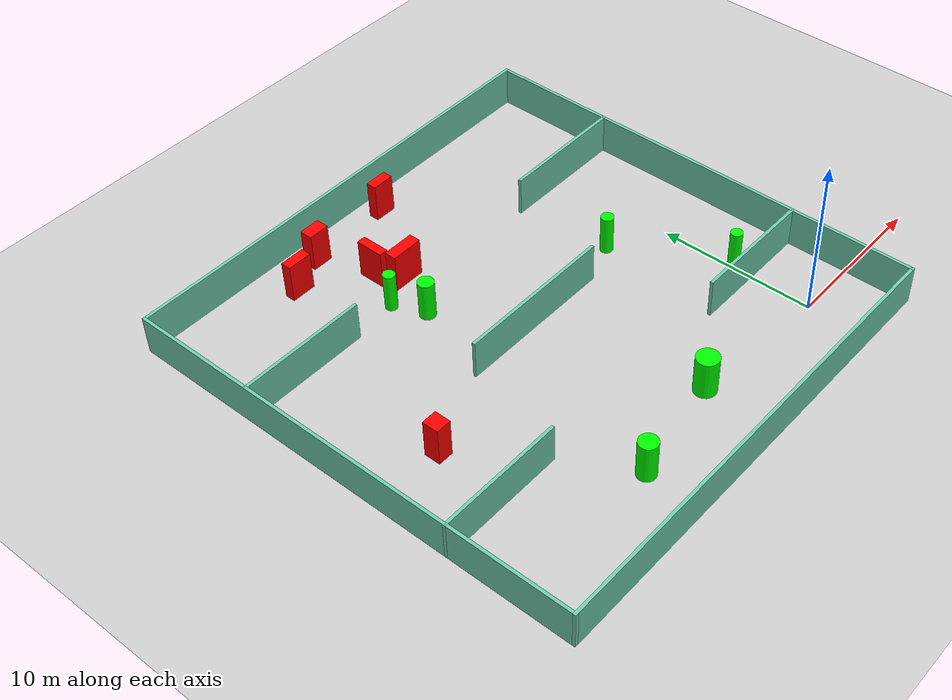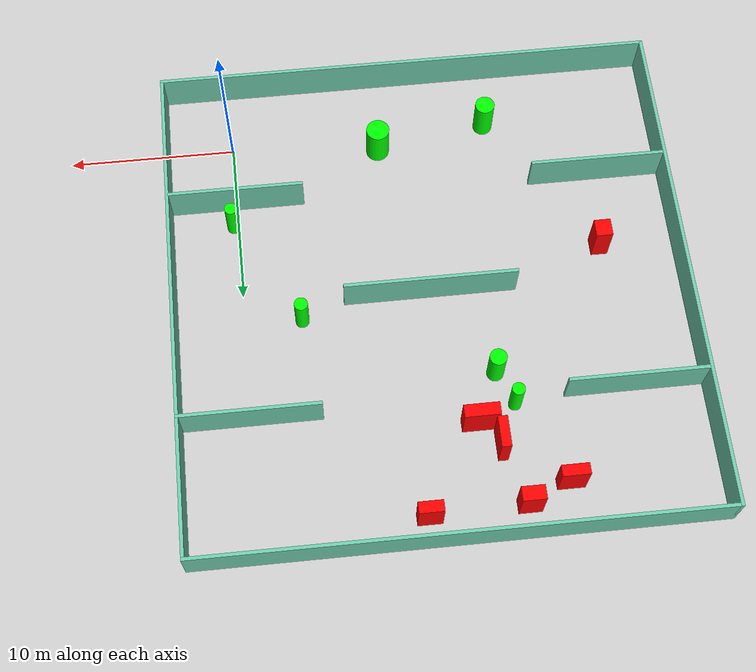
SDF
<sdf version="1.7">
 <world name="default">
  <light name="sun" type="directional">
   <pose>0 0 10 0 -0 0</pose>
   <diffuse>0.8 0.8 0.8 1</diffuse>
   <specular>0.2 0.2 0.2 1</specular>
   <attenuation>
    <range>1000</range>
    <constant>0.9</constant>
    <linear>0.01</linear>
    <quadratic>0.001</quadratic>
   </attenuation>
   <direction>-0.5 0.1 -0.9</direction>
   <spot><inner_angle>0</inner_angle><outer_angle>0</outer_angle><falloff>0</falloff></spot>
  </light>
  <model name="ground_plane">
   <static>1</static>
   <link name="link">
    <collision name="collision">
     <geometry><plane><normal>0 0 1</normal><size>100 100</size></plane></geometry>
     <surface>
      <contact><collide_bitmask>65535</collide_bitmask></contact>
      <friction><ode><mu>100</mu><mu2>50</mu2></ode></friction>
     </surface>
    </collision>
    <visual name="visual">
     <cast_shadows>0</cast_shadows>
     <geometry><plane><normal>0 0 1</normal><size>100 100</size></plane></geometry>
     <material>
      <script><uri>file://media/materials/scripts/gazebo.material</uri><name>Gazebo/Grey</name></script>
     </material>
    </visual>
   </link>
  </model>
  <gravity>0 0 -9.8</gravity>
  <magnetic_field>6e-06 2.3e-05 -4.2e-05</magnetic_field>
  <atmosphere type="adiabatic"/>
  <physics type="ode">
   <max_step_size>0.001</max_step_size>
   <real_time_factor>1</real_time_factor>
   <real_time_update_rate>1000</real_time_update_rate>
  </physics>
  <scene><ambient>0.4 0.4 0.4 1</ambient><background>0.7 0.7 0.7 1</background><shadows>1</shadows></scene>
  <spherical_coordinates>
   <surface_model>EARTH_WGS84</surface_model>
   <latitude_deg>0</latitude_deg>
   <longitude_deg>0</longitude_deg>
   <elevation>0</elevation>
   <heading_deg>0</heading_deg>
  </spherical_coordinates>
  <model name="my_base_walls">
   <link name="Wall_10">
    <collision name="Wall_10_Collision">
     <geometry><box><size>8.2 0.2 2.5</size></box></geometry>
     <pose>0 0 1.25 0 -0 0</pose>
    </collision>
    <visual name="Wall_10_Visual">
     <pose>0 0 1.25 0 -0 0</pose>
     <geometry><box><size>8.2 0.2 2.5</size></box></geometry>
     <material>
      <script><uri>file://media/materials/scripts/gazebo.material</uri><name>Gazebo/Grey</name></script>
      <ambient>0.435294 0.796078 0.67451 1</ambient>
     </material>
     <meta><layer>0</layer></meta>
    </visual>
    <pose>-11 -7 0 0 -0 0</pose>
   </link>
   <link name="Wall_12">
    <collision name="Wall_12_Collision">
     <geometry><box><size>8.2 0.2 2.5</size></box></geometry>
     <pose>0 0 1.25 0 -0 0</pose>
    </collision>
    <visual name="Wall_12_Visual">
     <pose>0 0 1.25 0 -0 0</pose>
     <geometry><box><size>8.2 0.2 2.5</size></box></geometry>
     <material>
      <script><uri>file://media/materials/scripts/gazebo.material</uri><name>Gazebo/Grey</name></script>
      <ambient>0.435294 0.796078 0.67451 1</ambient>
     </material>
     <meta><layer>0</layer></meta>
    </visual>
    <pose>-11 7 0 0 -0 0</pose>
   </link>
   <link name="Wall_14">
    <collision name="Wall_14_Collision">
     <geometry><box><size>8.2 0.2 2.5</size></box></geometry>
     <pose>0 0 1.25 0 -0 0</pose>
    </collision>
    <visual name="Wall_14_Visual">
     <pose>0 0 1.25 0 -0 0</pose>
     <geometry><box><size>8.2 0.2 2.5</size></box></geometry>
     <material>
      <script><uri>file://media/materials/scripts/gazebo.material</uri><name>Gazebo/Grey</name></script>
      <ambient>0.435294 0.796078 0.67451 1</ambient>
     </material>
     <meta><layer>0</layer></meta>
    </visual>
    <pose>11 7 0 0 -0 3.14159</pose>
   </link>
   <link name="Wall_16">
    <collision name="Wall_16_Collision">
     <geometry><box><size>10.2 0.2 2.5</size></box></geometry>
     <pose>0 0 1.25 0 -0 0</pose>
    </collision>
    <visual name="Wall_16_Visual">
     <pose>0 0 1.25 0 -0 0</pose>
     <geometry><box><size>10.2 0.2 2.5</size></box></geometry>
     <material>
      <script><uri>file://media/materials/scripts/gazebo.material</uri><name>Gazebo/Grey</name></script>
      <ambient>0.435294 0.796078 0.67451 1</ambient>
     </material>
     <meta><layer>0</layer></meta>
    </visual>
    <pose>0 0 0 0 -0 3.14159</pose>
   </link>
   <link name="Wall_2">
    <collision name="Wall_2_Collision">
     <geometry><box><size>30.2 0.2 2.5</size></box></geometry>
     <pose>0 0 1.25 0 -0 0</pose>
    </collision>
    <visual name="Wall_2_Visual">
     <pose>0 0 1.25 0 -0 0</pose>
     <geometry><box><size>30.2 0.2 2.5</size></box></geometry>
     <material>
      <script><uri>file://media/materials/scripts/gazebo.material</uri><name>Gazebo/Grey</name></script>
      <ambient>0.435294 0.796078 0.67451 1</ambient>
     </material>
     <meta><layer>0</layer></meta>
    </visual>
    <pose>0 -15 0 0 -0 3.14159</pose>
   </link>
   <link name="Wall_3">
    <collision name="Wall_3_Collision">
     <geometry><box><size>30.2 0.2 2.5</size></box></geometry>
     <pose>0 0 1.25 0 -0 0</pose>
    </collision>
    <visual name="Wall_3_Visual">
     <pose>0 0 1.25 0 -0 0</pose>
     <geometry><box><size>30.2 0.2 2.5</size></box></geometry>
     <material>
      <script><uri>file://media/materials/scripts/gazebo.material</uri><name>Gazebo/Grey</name></script>
      <ambient>0.435294 0.796078 0.67451 1</ambient>
     </material>
     <meta><layer>0</layer></meta>
    </visual>
    <pose>-15 0 0 0 -0 1.5708</pose>
   </link>
   <link name="Wall_4">
    <collision name="Wall_4_Collision">
     <geometry><box><size>30.2 0.2 2.5</size></box></geometry>
     <pose>0 0 1.25 0 -0 0</pose>
    </collision>
    <visual name="Wall_4_Visual">
     <pose>0 0 1.25 0 -0 0</pose>
     <geometry><box><size>30.2 0.2 2.5</size></box></geometry>
     <material>
      <script><uri>file://media/materials/scripts/gazebo.material</uri><name>Gazebo/Grey</name></script>
      <ambient>0.435294 0.796078 0.67451 1</ambient>
     </material>
     <meta><layer>0</layer></meta>
    </visual>
    <pose>0 15 0 0 -0 0</pose>
   </link>
   <link name="Wall_6">
    <collision name="Wall_6_Collision">
     <geometry><box><size>30.2 0.2 2.5</size></box></geometry>
     <pose>0 0 1.25 0 -0 0</pose>
    </collision>
    <visual name="Wall_6_Visual">
     <pose>0 0 1.25 0 -0 0</pose>
     <geometry><box><size>30.2 0.2 2.5</size></box></geometry>
     <material>
      <script><uri>file://media/materials/scripts/gazebo.material</uri><name>Gazebo/Grey</name></script>
      <ambient>0.435294 0.796078 0.67451 1</ambient>
     </material>
     <meta><layer>0</layer></meta>
    </visual>
    <pose>15 0 0 0 -0 1.5708</pose>
   </link>
   <link name="Wall_8">
    <collision name="Wall_8_Collision">
     <geometry><box><size>8.2 0.2 2.5</size></box></geometry>
     <pose>0 0 1.25 0 -0 0</pose>
    </collision>
    <visual name="Wall_8_Visual">
     <pose>0 0 1.25 0 -0 0</pose>
     <geometry><box><size>8.2 0.2 2.5</size></box></geometry>
     <material>
      <script><uri>file://media/materials/scripts/gazebo.material</uri><name>Gazebo/Grey</name></script>
      <ambient>0.435294 0.796078 0.67451 1</ambient>
     </material>
     <meta><layer>0</layer></meta>
    </visual>
    <pose>11 -7 0 0 -0 3.14159</pose>
   </link>
   <static>1</static>
   <pose>-11 11 0 0 -0 0</pose>
  </model>
  <model name="cylinder1">
   <static>1</static>
   <link name="link">
    <inertial>
     <mass>1</mass>
     <inertia><ixx>0.5</ixx><ixy>0</ixy><ixz>0</ixz><iyy>0.5</iyy><iyz>0</iyz><izz>1</izz></inertia>
    </inertial>
    <collision name="collision">
     <geometry><cylinder><radius>0.4996120961513085</radius><length>2.5</length></cylinder></geometry>
    </collision>
    <visual name="visual">
     <geometry><cylinder><radius>0.4996120961513085</radius><length>2.5</length></cylinder></geometry>
     <material>
      <ambient>0 1 0 1</ambient>
      <diffuse>0 1 0 1</diffuse>
      <specular>0.1 0.1 0.1 1</specular>
      <emissive>0 0 0 0</emissive>
     </material>
    </visual>
   </link>
   <pose>-14.16874638196227 16.268422484631863 1.25 0 0 0</pose>
  </model>
  <model name="cylinder2">
   <static>1</static>
   <link name="link">
    <inertial>
     <mass>1</mass>
     <inertia><ixx>0.5</ixx><ixy>0</ixy><ixz>0</ixz><iyy>0.5</iyy><iyz>0</iyz><izz>1</izz></inertia>
    </inertial>
    <collision name="collision">
     <geometry><cylinder><radius>0.37872318359413687</radius><length>2.5</length></cylinder></geometry>
    </collision>
    <visual name="visual">
     <geometry><cylinder><radius>0.37872318359413687</radius><length>2.5</length></cylinder></geometry>
     <material>
      <ambient>0 1 0 1</ambient>
      <diffuse>0 1 0 1</diffuse>
      <specular>0.1 0.1 0.1 1</specular>
      <emissive>0 0 0 0</emissive>
     </material>
    </visual>
   </link>
   <pose>-15.023134543566218 18.27201954895812 1.25 0 0 0</pose>
  </model>
  <model name="cylinder3">
   <static>1</static>
   <link name="link">
    <inertial>
     <mass>1</mass>
     <inertia><ixx>0.5</ixx><ixy>0</ixy><ixz>0</ixz><iyy>0.5</iyy><iyz>0</iyz><izz>1</izz></inertia>
    </inertial>
    <collision name="collision">
     <geometry><cylinder><radius>0.3748795680476363</radius><length>2.5</length></cylinder></geometry>
    </collision>
    <visual name="visual">
     <geometry><cylinder><radius>0.3748795680476363</radius><length>2.5</length></cylinder></geometry>
     <material>
      <ambient>0 1 0 1</ambient>
      <diffuse>0 1 0 1</diffuse>
      <specular>0.1 0.1 0.1 1</specular>
      <emissive>0 0 0 0</emissive>
     </material>
    </visual>
   </link>
   <pose>0.27981114777928084 5.3377498078579 1.25 0 0 0</pose>
  </model>
  <model name="cylinder4">
   <static>1</static>
   <link name="link">
    <inertial>
     <mass>1</mass>
     <inertia><ixx>0.5</ixx><ixy>0</ixy><ixz>0</ixz><iyy>0.5</iyy><iyz>0</iyz><izz>1</izz></inertia>
    </inertial>
    <collision name="collision">
     <geometry><cylinder><radius>0.695186398631348</radius><length>2.5</length></cylinder></geometry>
    </collision>
    <visual name="visual">
     <geometry><cylinder><radius>0.695186398631348</radius><length>2.5</length></cylinder></geometry>
     <material>
      <ambient>0 1 0 1</ambient>
      <diffuse>0 1 0 1</diffuse>
      <specular>0.1 0.1 0.1 1</specular>
      <emissive>0 0 0 0</emissive>
     </material>
    </visual>
   </link>
   <pose>-8.940202282847798 0.7972898683346661 1.25 0 0 0</pose>
  </model>
  <model name="cylinder5">
   <static>1</static>
   <link name="link">
    <inertial>
     <mass>1</mass>
     <inertia><ixx>0.5</ixx><ixy>0</ixy><ixz>0</ixz><iyy>0.5</iyy><iyz>0</iyz><izz>1</izz></inertia>
    </inertial>
    <collision name="collision">
     <geometry><cylinder><radius>0.39982734137907006</radius><length>2.5</length></cylinder></geometry>
    </collision>
    <visual name="visual">
     <geometry><cylinder><radius>0.39982734137907006</radius><length>2.5</length></cylinder></geometry>
     <material>
      <ambient>0 1 0 1</ambient>
      <diffuse>0 1 0 1</diffuse>
      <specular>0.1 0.1 0.1 1</specular>
      <emissive>0 0 0 0</emissive>
     </material>
    </visual>
   </link>
   <pose>-3.3722630240008513 11.920297953831453 1.25 0 0 0</pose>
  </model>
  <model name="cylinder6">
   <static>1</static>
   <link name="link">
    <inertial>
     <mass>1</mass>
     <inertia><ixx>0.5</ixx><ixy>0</ixy><ixz>0</ixz><iyy>0.5</iyy><iyz>0</iyz><izz>1</izz></inertia>
    </inertial>
    <collision name="collision">
     <geometry><cylinder><radius>0.5836470912516516</radius><length>2.5</length></cylinder></geometry>
    </collision>
    <visual name="visual">
     <geometry><cylinder><radius>0.5836470912516516</radius><length>2.5</length></cylinder></geometry>
     <material>
      <ambient>0 1 0 1</ambient>
      <diffuse>0 1 0 1</diffuse>
      <specular>0.1 0.1 0.1 1</specular>
      <emissive>0 0 0 0</emissive>
     </material>
    </visual>
   </link>
   <pose>-15.659208888087546 -0.3311097368099958 1.25 0 0 0</pose>
  </model>
  <model name="box1">
   <static>1</static>
   <link name="link">
    <inertial>
     <mass>1</mass>
     <inertia><ixx>0.083</ixx><ixy>0</ixy><ixz>0</ixz><iyy>0.083</iyy><iyz>0</iyz><izz>0.083</izz></inertia>
    </inertial>
    <collision name="collision">
     <geometry><box><size>1.4198148305502927 0.6543124832055743 2.5</size></box></geometry>
    </collision>
    <visual name="visual">
     <geometry><box><size>1.4198148305502927 0.6543124832055743 2.5</size></box></geometry>
     <material>
      <ambient>1 0 0 1</ambient>
      <diffuse>1 0 0 1</diffuse>
      <specular>0.1 0.1 0.1 1</specular>
      <emissive>0 0 0 0</emissive>
     </material>
    </visual>
    <sensor name="my_contact" type="contact">
     <contact><collision>box_collision</collision><topic>__default_topic__</topic></contact>
    </sensor>
   </link>
   <pose>-9.392388586051016 24.475785045469987 1.25 0 0 0</pose>
  </model>
  <model name="box2">
   <static>1</static>
   <link name="link">
    <inertial>
     <mass>1</mass>
     <inertia><ixx>0.083</ixx><ixy>0</ixy><ixz>0</ixz><iyy>0.083</iyy><iyz>0</iyz><izz>0.083</izz></inertia>
    </inertial>
    <collision name="collision">
     <geometry><box><size>1.3356580725531728 0.8176022167506711 2.5</size></box></geometry>
    </collision>
    <visual name="visual">
     <geometry><box><size>1.3356580725531728 0.8176022167506711 2.5</size></box></geometry>
     <material>
      <ambient>1 0 0 1</ambient>
      <diffuse>1 0 0 1</diffuse>
      <specular>0.1 0.1 0.1 1</specular>
      <emissive>0 0 0 0</emissive>
     </material>
    </visual>
    <sensor name="my_contact" type="contact">
     <contact><collision>box_collision</collision><topic>__default_topic__</topic></contact>
    </sensor>
   </link>
   <pose>-14.98073017480899 24.263701137214078 1.25 0 0 0</pose>
  </model>
  <model name="box3">
   <static>1</static>
   <link name="link">
    <inertial>
     <mass>1</mass>
     <inertia><ixx>0.083</ixx><ixy>0</ixy><ixz>0</ixz><iyy>0.083</iyy><iyz>0</iyz><izz>0.083</izz></inertia>
    </inertial>
    <collision name="collision">
     <geometry><box><size>0.9753166412206213 1.0410268400200051 2.5</size></box></geometry>
    </collision>
    <visual name="visual">
     <geometry><box><size>0.9753166412206213 1.0410268400200051 2.5</size></box></geometry>
     <material>
      <ambient>1 0 0 1</ambient>
      <diffuse>1 0 0 1</diffuse>
      <specular>0.1 0.1 0.1 1</specular>
      <emissive>0 0 0 0</emissive>
     </material>
    </visual>
    <sensor name="my_contact" type="contact">
     <contact><collision>box_collision</collision><topic>__default_topic__</topic></contact>
    </sensor>
   </link>
   <pose>-21.448341973284116 8.7509970574324 1.25 0 0 0</pose>
  </model>
  <model name="box4">
   <static>1</static>
   <link name="link">
    <inertial>
     <mass>1</mass>
     <inertia><ixx>0.083</ixx><ixy>0</ixy><ixz>0</ixz><iyy>0.083</iyy><iyz>0</iyz><izz>0.083</izz></inertia>
    </inertial>
    <collision name="collision">
     <geometry><box><size>1.5834415926698198 0.644500206192221 2.5</size></box></geometry>
    </collision>
    <visual name="visual">
     <geometry><box><size>1.5834415926698198 0.644500206192221 2.5</size></box></geometry>
     <material>
      <ambient>1 0 0 1</ambient>
      <diffuse>1 0 0 1</diffuse>
      <specular>0.1 0.1 0.1 1</specular>
      <emissive>0 0 0 0</emissive>
     </material>
    </visual>
    <sensor name="my_contact" type="contact">
     <contact><collision>box_collision</collision><topic>__default_topic__</topic></contact>
    </sensor>
   </link>
   <pose>-17.44217494512495 23.203621857396175 1.25 0 0 0</pose>
  </model>
  <model name="box5">
   <static>1</static>
   <link name="link">
    <inertial>
     <mass>1</mass>
     <inertia><ixx>0.083</ixx><ixy>0</ixy><ixz>0</ixz><iyy>0.083</iyy><iyz>0</iyz><izz>0.083</izz></inertia>
    </inertial>
    <collision name="collision">
     <geometry><box><size>2.0506713118958917 0.735588733935773 2.5</size></box></geometry>
    </collision>
    <visual name="visual">
     <geometry><box><size>2.0506713118958917 0.735588733935773 2.5</size></box></geometry>
     <material>
      <ambient>1 0 0 1</ambient>
      <diffuse>1 0 0 1</diffuse>
      <specular>0.1 0.1 0.1 1</specular>
      <emissive>0 0 0 0</emissive>
     </material>
    </visual>
    <sensor name="my_contact" type="contact">
     <contact><collision>box_collision</collision><topic>__default_topic__</topic></contact>
    </sensor>
   </link>
   <pose>-12.850826133827255 19.285492511772564 1.25 0 0 0</pose>
  </model>
  <model name="box6">
   <static>1</static>
   <link name="link">
    <inertial>
     <mass>1</mass>
     <inertia><ixx>0.083</ixx><ixy>0</ixy><ixz>0</ixz><iyy>0.083</iyy><iyz>0</iyz><izz>0.083</izz></inertia>
    </inertial>
    <collision name="collision">
     <geometry><box><size>0.5599275928507591 1.7921762466718658 2.5</size></box></geometry>
    </collision>
    <visual name="visual">
     <geometry><box><size>0.5599275928507591 1.7921762466718658 2.5</size></box></geometry>
     <material>
      <ambient>1 0 0 1</ambient>
      <diffuse>1 0 0 1</diffuse>
      <specular>0.1 0.1 0.1 1</specular>
      <emissive>0 0 0 0</emissive>
     </material>
    </visual>
    <sensor name="my_contact" type="contact">
     <contact><collision>box_collision</collision><topic>__default_topic__</topic></contact>
    </sensor>
   </link>
   <pose>-13.903270374318353 20.64348765573747 1.25 0 0 0</pose>
  </model>
 </world>
</sdf>
